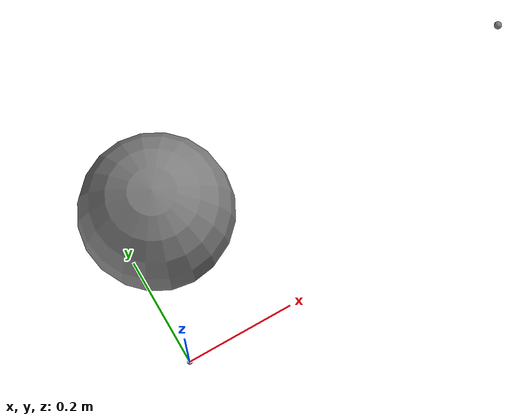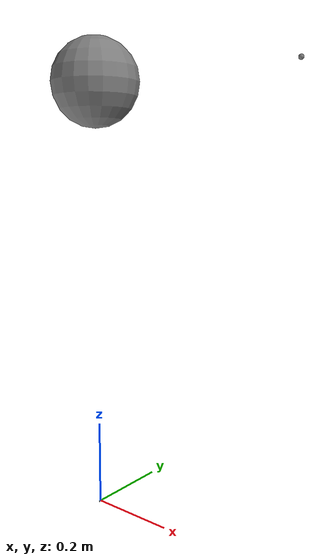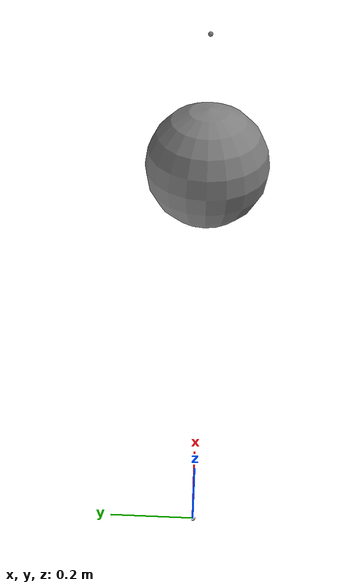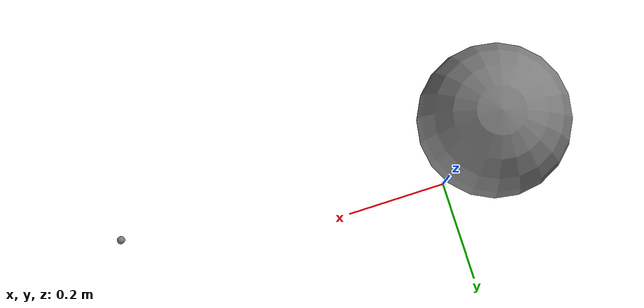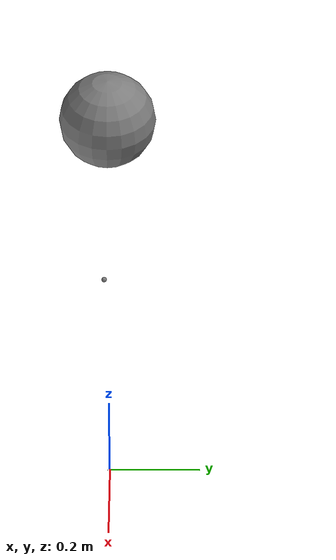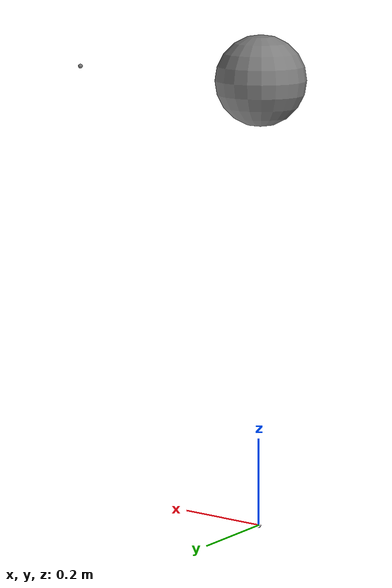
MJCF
<mujoco model="gain_bias_force">
            <worldbody>
                <body name="b1" pos="0 0 1">
                    <joint name="j1" type="hinge" axis="0 1 0"/>
                    <geom type="sphere" size="0.1" mass="1.0"/>
                    <site name="ee" pos="0.5 0 0"/>
                </body>
                <site name="target" pos="0 0 0"/>
            </worldbody>
            <actuator>
                <position name="a1" site="ee" refsite="target" kp="50" gear="0 0 1 0 0 0"
                          ctrlrange="-10 10"/>
            </actuator>
        </mujoco>
